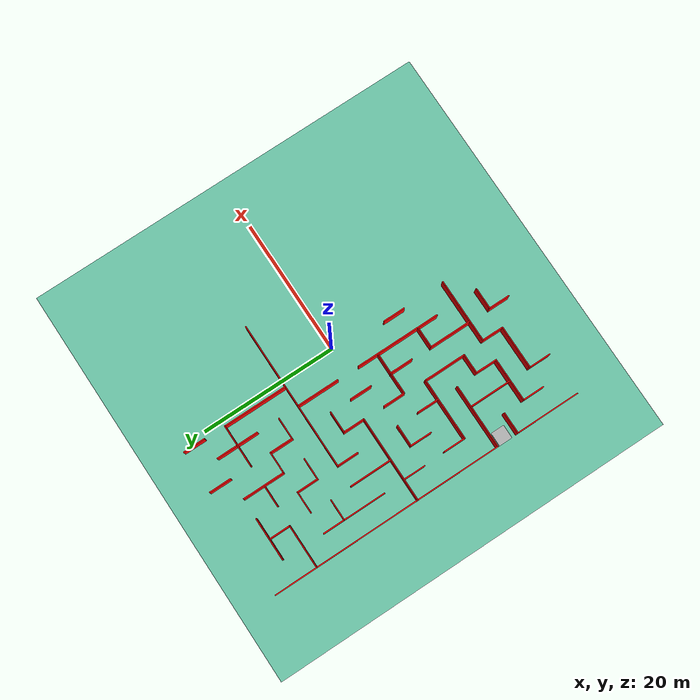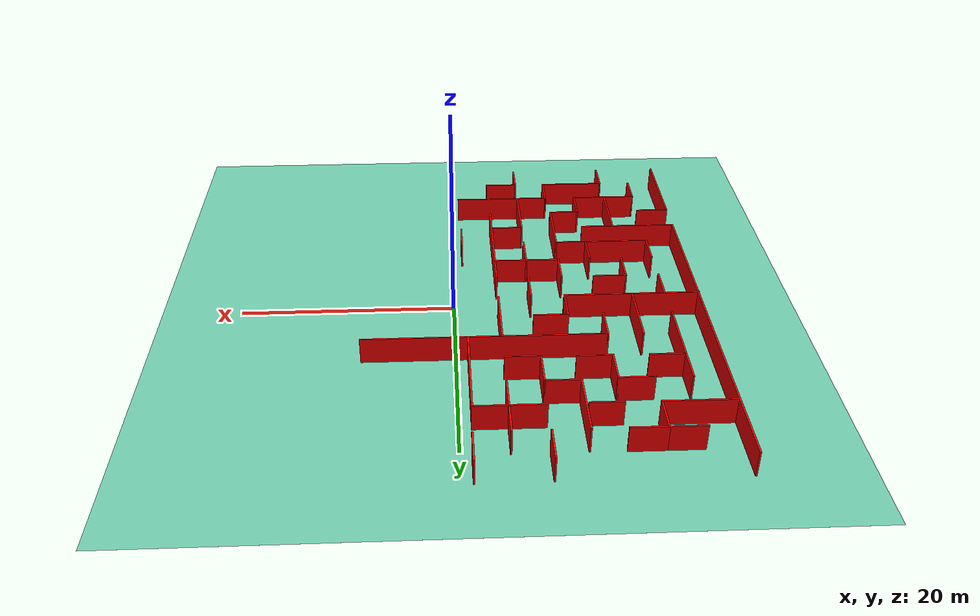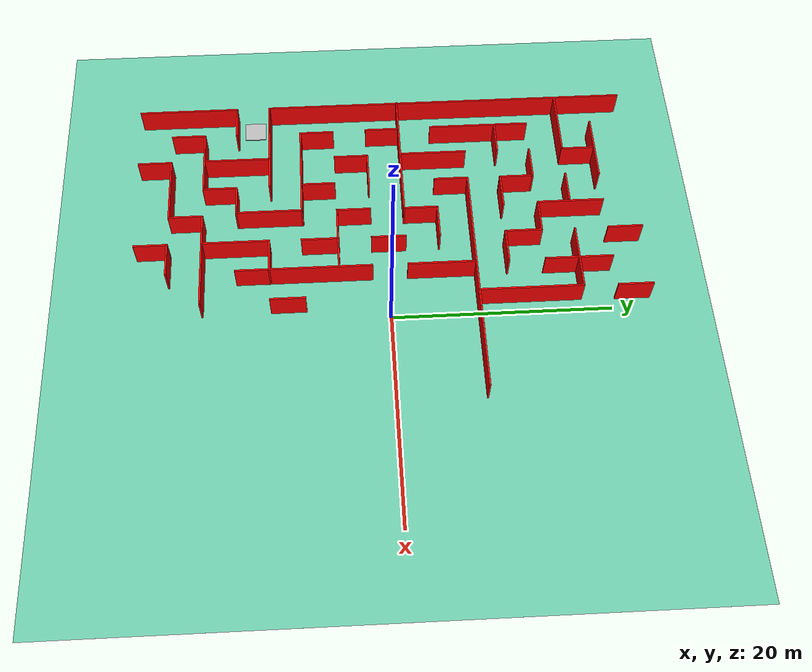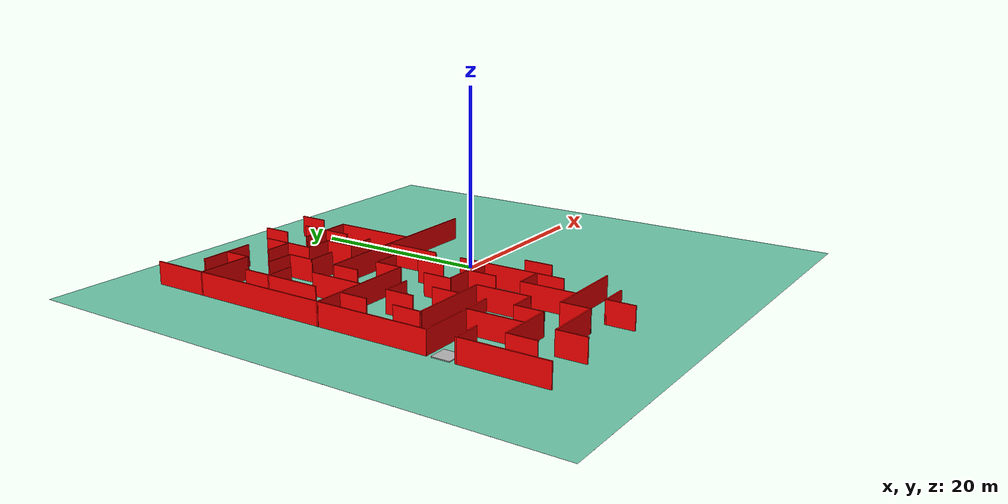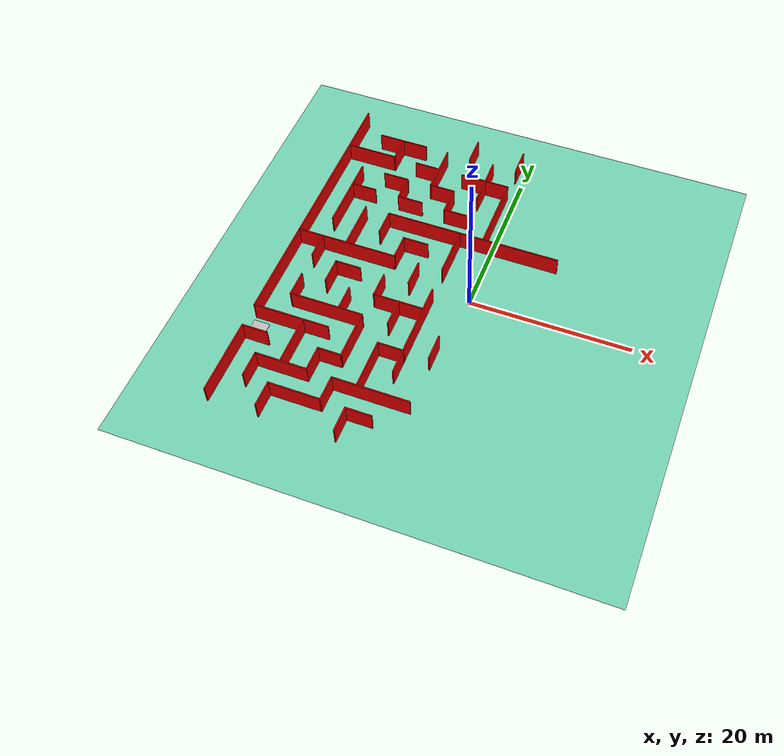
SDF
<sdf version="1.6">
 <world name="default">
  <include><uri>model://start_marker</uri><pose>-21.918570 -12.303885 0.026924 0 0 -1.57</pose></include>
  <model name="Final_Maze">
   <pose>-1.35978 -0.782493 0 0 -0 0</pose>
   <link name="Wall_0">
    <collision name="Wall_0_Collision">
     <geometry><box><size>60.01 60 0.001</size></box></geometry>
     <pose>0 0 0.0005 0 -0 0</pose>
    </collision>
    <visual name="Wall_0_Visual">
     <pose>0 0 0.0005 0 -0 0</pose>
     <geometry><box><size>60.01 60 0.001</size></box></geometry>
     <material>
      <script><uri>file://media/materials/scripts/gazebo.material</uri><name>Gazebo/Grey</name></script>
      <ambient>0.435294 0.796078 0.67451 1</ambient>
     </material>
     <meta><layer>0</layer></meta>
    </visual>
    <pose>-1.10022 -0.122507 0 0 -0 -1.5708</pose>
   </link>
   <link name="Wall_100">
    <collision name="Wall_100_Collision">
     <geometry><box><size>6.25 0.15 2.5</size></box></geometry>
     <pose>0 0 1.25 0 -0 0</pose>
    </collision>
    <visual name="Wall_100_Visual">
     <pose>0 0 1.25 0 -0 0</pose>
     <geometry><box><size>6.25 0.15 2.5</size></box></geometry>
     <material>
      <script><uri>file://media/materials/scripts/gazebo.material</uri><name>Gazebo/Grey</name></script>
      <ambient>1 0 0 1</ambient>
     </material>
     <meta><layer>1</layer></meta>
    </visual>
    <pose>-15.2625 5.65444 0.001 0 -0 -1.5708</pose>
   </link>
   <link name="Wall_102">
    <collision name="Wall_102_Collision">
     <geometry><box><size>3.25 0.15 2.5</size></box></geometry>
     <pose>0 0 1.25 0 -0 0</pose>
    </collision>
    <visual name="Wall_102_Visual">
     <pose>0 0 1.25 0 -0 0</pose>
     <geometry><box><size>3.25 0.15 2.5</size></box></geometry>
     <material>
      <script><uri>file://media/materials/scripts/gazebo.material</uri><name>Gazebo/Grey</name></script>
      <ambient>1 0 0 1</ambient>
     </material>
     <meta><layer>1</layer></meta>
    </visual>
    <pose>-18.3231 0.892618 0.001 0 -0 -1.5708</pose>
   </link>
   <link name="Wall_104">
    <collision name="Wall_104_Collision">
     <geometry><box><size>3.25 0.15 2.5</size></box></geometry>
     <pose>0 0 1.25 0 -0 0</pose>
    </collision>
    <visual name="Wall_104_Visual">
     <pose>0 0 1.25 0 -0 0</pose>
     <geometry><box><size>3.25 0.15 2.5</size></box></geometry>
     <material>
      <script><uri>file://media/materials/scripts/gazebo.material</uri><name>Gazebo/Grey</name></script>
      <ambient>1 0 0 1</ambient>
     </material>
     <meta><layer>1</layer></meta>
    </visual>
    <pose>-15.1922 -2.19884 0.001 0 -0 1.5708</pose>
   </link>
   <link name="Wall_105">
    <collision name="Wall_105_Collision">
     <geometry><box><size>3.25 0.15 2.5</size></box></geometry>
     <pose>0 0 1.25 0 -0 0</pose>
    </collision>
    <visual name="Wall_105_Visual">
     <pose>0 0 1.25 0 -0 0</pose>
     <geometry><box><size>3.25 0.15 2.5</size></box></geometry>
     <material>
      <script><uri>file://media/materials/scripts/gazebo.material</uri><name>Gazebo/Grey</name></script>
      <ambient>1 0 0 1</ambient>
     </material>
     <meta><layer>1</layer></meta>
    </visual>
    <pose>-13.6422 -0.648844 0.001 0 -0 0</pose>
   </link>
   <link name="Wall_107">
    <collision name="Wall_107_Collision">
     <geometry><box><size>3.25 0.15 2.5</size></box></geometry>
     <pose>0 0 1.25 0 -0 0</pose>
    </collision>
    <visual name="Wall_107_Visual">
     <pose>0 0 1.25 0 -0 0</pose>
     <geometry><box><size>3.25 0.15 2.5</size></box></geometry>
     <material>
      <script><uri>file://media/materials/scripts/gazebo.material</uri><name>Gazebo/Grey</name></script>
      <ambient>1 0 0 1</ambient>
     </material>
     <meta><layer>1</layer></meta>
    </visual>
    <pose>-5.81894 0.918183 0.001 0 -0 1.5708</pose>
   </link>
   <link name="Wall_136">
    <collision name="Wall_136_Collision">
     <geometry><box><size>9.5 0.15 2.5</size></box></geometry>
     <pose>0 0 1.25 0 -0 0</pose>
    </collision>
    <visual name="Wall_136_Visual">
     <pose>0 0 1.25 0 -0 0</pose>
     <geometry><box><size>9.5 0.15 2.5</size></box></geometry>
     <material>
      <script><uri>file://media/materials/scripts/gazebo.material</uri><name>Gazebo/Grey</name></script>
      <ambient>1 0 0 1</ambient>
     </material>
     <meta><layer>1</layer></meta>
    </visual>
    <pose>-18.3879 10.295 0.001 0 -0 -1.5708</pose>
   </link>
   <link name="Wall_138">
    <collision name="Wall_138_Collision">
     <geometry><box><size>3.25 0.15 2.5</size></box></geometry>
     <pose>0 0 1.25 0 -0 0</pose>
    </collision>
    <visual name="Wall_138_Visual">
     <pose>0 0 1.25 0 -0 0</pose>
     <geometry><box><size>3.25 0.15 2.5</size></box></geometry>
     <material>
      <script><uri>file://media/materials/scripts/gazebo.material</uri><name>Gazebo/Grey</name></script>
      <ambient>1 0 0 1</ambient>
     </material>
     <meta><layer>1</layer></meta>
    </visual>
    <pose>-16.8379 11.8391 0.001 0 -0 0</pose>
   </link>
   <link name="Wall_14">
    <collision name="Wall_14_Collision">
     <geometry><box><size>3.25 0.15 2.5</size></box></geometry>
     <pose>0 0 1.25 0 -0 0</pose>
    </collision>
    <visual name="Wall_14_Visual">
     <pose>0 0 1.25 0 -0 0</pose>
     <geometry><box><size>3.25 0.15 2.5</size></box></geometry>
     <material>
      <script><uri>file://media/materials/scripts/gazebo.material</uri><name>Gazebo/Grey</name></script>
      <ambient>1 0 0 1</ambient>
     </material>
     <meta><layer>1</layer></meta>
    </visual>
    <pose>-15.2471 -20.8919 0.001 0 -0 1.5708</pose>
   </link>
   <link name="Wall_140">
    <collision name="Wall_140_Collision">
     <geometry><box><size>3.25 0.15 2.5</size></box></geometry>
     <pose>0 0 1.25 0 -0 0</pose>
    </collision>
    <visual name="Wall_140_Visual">
     <pose>0 0 1.25 0 -0 0</pose>
     <geometry><box><size>3.25 0.15 2.5</size></box></geometry>
     <material>
      <script><uri>file://media/materials/scripts/gazebo.material</uri><name>Gazebo/Grey</name></script>
      <ambient>1 0 0 1</ambient>
     </material>
     <meta><layer>1</layer></meta>
    </visual>
    <pose>-13.6366 14.8996 0.001 0 -0 0</pose>
   </link>
   <link name="Wall_141">
    <collision name="Wall_141_Collision">
     <geometry><box><size>3.25 0.15 2.5</size></box></geometry>
     <pose>0 0 1.25 0 -0 0</pose>
    </collision>
    <visual name="Wall_141_Visual">
     <pose>0 0 1.25 0 -0 0</pose>
     <geometry><box><size>3.25 0.15 2.5</size></box></geometry>
     <material>
      <script><uri>file://media/materials/scripts/gazebo.material</uri><name>Gazebo/Grey</name></script>
      <ambient>1 0 0 1</ambient>
     </material>
     <meta><layer>1</layer></meta>
    </visual>
    <pose>-12.0867 13.3496 0.001 0 -0 -1.5708</pose>
   </link>
   <link name="Wall_142">
    <collision name="Wall_142_Collision">
     <geometry><box><size>3.25 0.15 2.5</size></box></geometry>
     <pose>0 0 1.25 0 -0 0</pose>
    </collision>
    <visual name="Wall_142_Visual">
     <pose>0 0 1.25 0 -0 0</pose>
     <geometry><box><size>3.25 0.15 2.5</size></box></geometry>
     <material>
      <script><uri>file://media/materials/scripts/gazebo.material</uri><name>Gazebo/Grey</name></script>
      <ambient>1 0 0 1</ambient>
     </material>
     <meta><layer>1</layer></meta>
    </visual>
    <pose>-10.5367 11.7996 0.001 0 -0 0</pose>
   </link>
   <link name="Wall_144">
    <collision name="Wall_144_Collision">
     <geometry><box><size>22 0.15 2.5</size></box></geometry>
     <pose>0 0 1.25 0 -0 0</pose>
    </collision>
    <visual name="Wall_144_Visual">
     <pose>0 0 1.25 0 -0 0</pose>
     <geometry><box><size>22 0.15 2.5</size></box></geometry>
     <material>
      <script><uri>file://media/materials/scripts/gazebo.material</uri><name>Gazebo/Grey</name></script>
      <ambient>1 0 0 1</ambient>
     </material>
     <meta><layer>1</layer></meta>
    </visual>
    <pose>-1.2011 8.70815 0.001 0 -0 0</pose>
   </link>
   <link name="Wall_146">
    <collision name="Wall_146_Collision">
     <geometry><box><size>3.25 0.15 2.5</size></box></geometry>
     <pose>0 0 1.25 0 -0 0</pose>
    </collision>
    <visual name="Wall_146_Visual">
     <pose>0 0 1.25 0 -0 0</pose>
     <geometry><box><size>3.25 0.15 2.5</size></box></geometry>
     <material>
      <script><uri>file://media/materials/scripts/gazebo.material</uri><name>Gazebo/Grey</name></script>
      <ambient>1 0 0 1</ambient>
     </material>
     <meta><layer>1</layer></meta>
    </visual>
    <pose>-12.1261 7.15815 0.001 0 -0 -1.5708</pose>
   </link>
   <link name="Wall_148">
    <collision name="Wall_148_Collision">
     <geometry><box><size>6.25 0.15 2.5</size></box></geometry>
     <pose>0 0 1.25 0 -0 0</pose>
    </collision>
    <visual name="Wall_148_Visual">
     <pose>0 0 1.25 0 -0 0</pose>
     <geometry><box><size>6.25 0.15 2.5</size></box></geometry>
     <material>
      <script><uri>file://media/materials/scripts/gazebo.material</uri><name>Gazebo/Grey</name></script>
      <ambient>1 0 0 1</ambient>
     </material>
     <meta><layer>1</layer></meta>
    </visual>
    <pose>-2.76855 5.58779 0.001 0 -0 -1.5708</pose>
   </link>
   <link name="Wall_15">
    <collision name="Wall_15_Collision">
     <geometry><box><size>6.5 0.15 2.5</size></box></geometry>
     <pose>0 0 1.25 0 -0 0</pose>
    </collision>
    <visual name="Wall_15_Visual">
     <pose>0 0 1.25 0 -0 0</pose>
     <geometry><box><size>6.5 0.15 2.5</size></box></geometry>
     <material>
      <script><uri>file://media/materials/scripts/gazebo.material</uri><name>Gazebo/Grey</name></script>
      <ambient>1 0 0 1</ambient>
     </material>
     <meta><layer>1</layer></meta>
    </visual>
    <pose>-12.0721 -19.3419 0.001 0 -0 0</pose>
   </link>
   <link name="Wall_158">
    <collision name="Wall_158_Collision">
     <geometry><box><size>6.5 0.15 2.5</size></box></geometry>
     <pose>0 0 1.25 0 -0 0</pose>
    </collision>
    <visual name="Wall_158_Visual">
     <pose>0 0 1.25 0 -0 0</pose>
     <geometry><box><size>6.5 0.15 2.5</size></box></geometry>
     <material>
      <script><uri>file://media/materials/scripts/gazebo.material</uri><name>Gazebo/Grey</name></script>
      <ambient>1 0 0 1</ambient>
     </material>
     <meta><layer>1</layer></meta>
    </visual>
    <pose>-18.3166 18.0907 0.001 0 -0 0</pose>
   </link>
   <link name="Wall_159">
    <collision name="Wall_159_Collision">
     <geometry><box><size>3.25 0.15 2.5</size></box></geometry>
     <pose>0 0 1.25 0 -0 0</pose>
    </collision>
    <visual name="Wall_159_Visual">
     <pose>0 0 1.25 0 -0 0</pose>
     <geometry><box><size>3.25 0.15 2.5</size></box></geometry>
     <material>
      <script><uri>file://media/materials/scripts/gazebo.material</uri><name>Gazebo/Grey</name></script>
      <ambient>1 0 0 1</ambient>
     </material>
     <meta><layer>1</layer></meta>
    </visual>
    <pose>-15.1416 19.6407 0.001 0 -0 1.5708</pose>
   </link>
   <link name="Wall_16">
    <collision name="Wall_16_Collision">
     <geometry><box><size>3.25 0.15 2.5</size></box></geometry>
     <pose>0 0 1.25 0 -0 0</pose>
    </collision>
    <visual name="Wall_16_Visual">
     <pose>0 0 1.25 0 -0 0</pose>
     <geometry><box><size>3.25 0.15 2.5</size></box></geometry>
     <material>
      <script><uri>file://media/materials/scripts/gazebo.material</uri><name>Gazebo/Grey</name></script>
      <ambient>1 0 0 1</ambient>
     </material>
     <meta><layer>1</layer></meta>
    </visual>
    <pose>-8.89709 -17.7919 0.001 0 -0 1.5708</pose>
   </link>
   <link name="Wall_160">
    <collision name="Wall_160_Collision">
     <geometry><box><size>3.25 0.15 2.5</size></box></geometry>
     <pose>0 0 1.25 0 -0 0</pose>
    </collision>
    <visual name="Wall_160_Visual">
     <pose>0 0 1.25 0 -0 0</pose>
     <geometry><box><size>3.25 0.15 2.5</size></box></geometry>
     <material>
      <script><uri>file://media/materials/scripts/gazebo.material</uri><name>Gazebo/Grey</name></script>
      <ambient>1 0 0 1</ambient>
     </material>
     <meta><layer>1</layer></meta>
    </visual>
    <pose>-16.6916 21.1907 0.001 0 -0 3.14159</pose>
   </link>
   <link name="Wall_162">
    <collision name="Wall_162_Collision">
     <geometry><box><size>3.25 0.15 2.5</size></box></geometry>
     <pose>0 0 1.25 0 -0 0</pose>
    </collision>
    <visual name="Wall_162_Visual">
     <pose>0 0 1.25 0 -0 0</pose>
     <geometry><box><size>3.25 0.15 2.5</size></box></geometry>
     <material>
      <script><uri>file://media/materials/scripts/gazebo.material</uri><name>Gazebo/Grey</name></script>
      <ambient>1 0 0 1</ambient>
     </material>
     <meta><layer>1</layer></meta>
    </visual>
    <pose>-13.5916 21.1907 0.001 0 -0 0</pose>
   </link>
   <link name="Wall_164">
    <collision name="Wall_164_Collision">
     <geometry><box><size>3 0.15 2.5</size></box></geometry>
     <pose>0 0 1.25 0 -0 0</pose>
    </collision>
    <visual name="Wall_164_Visual">
     <pose>0 0 1.25 0 -0 0</pose>
     <geometry><box><size>3 0.15 2.5</size></box></geometry>
     <material>
      <script><uri>file://media/materials/scripts/gazebo.material</uri><name>Gazebo/Grey</name></script>
      <ambient>1 0 0 1</ambient>
     </material>
     <meta><layer>1</layer></meta>
    </visual>
    <pose>-10.6862 18.0147 0.001 0 -0 0</pose>
   </link>
   <link name="Wall_166">
    <collision name="Wall_166_Collision">
     <geometry><box><size>6.25 0.15 2.5</size></box></geometry>
     <pose>0 0 1.25 0 -0 0</pose>
    </collision>
    <visual name="Wall_166_Visual">
     <pose>0 0 1.25 0 -0 0</pose>
     <geometry><box><size>6.25 0.15 2.5</size></box></geometry>
     <material>
      <script><uri>file://media/materials/scripts/gazebo.material</uri><name>Gazebo/Grey</name></script>
      <ambient>1 0 0 1</ambient>
     </material>
     <meta><layer>1</layer></meta>
    </visual>
    <pose>-8.99797 18.078 0.001 0 -0 -1.5708</pose>
   </link>
   <link name="Wall_169">
    <collision name="Wall_169_Collision">
     <geometry><box><size>3.25 0.15 2.5</size></box></geometry>
     <pose>0 0 1.25 0 -0 0</pose>
    </collision>
    <visual name="Wall_169_Visual">
     <pose>0 0 1.25 0 -0 0</pose>
     <geometry><box><size>3.25 0.15 2.5</size></box></geometry>
     <material>
      <script><uri>file://media/materials/scripts/gazebo.material</uri><name>Gazebo/Grey</name></script>
      <ambient>1 0 0 1</ambient>
     </material>
     <meta><layer>1</layer></meta>
    </visual>
    <pose>-7.44797 15.028 0.001 0 -0 0</pose>
   </link>
   <link name="Wall_17">
    <collision name="Wall_17_Collision">
     <geometry><box><size>9.5 0.15 2.5</size></box></geometry>
     <pose>0 0 1.25 0 -0 0</pose>
    </collision>
    <visual name="Wall_17_Visual">
     <pose>0 0 1.25 0 -0 0</pose>
     <geometry><box><size>9.5 0.15 2.5</size></box></geometry>
     <material>
      <script><uri>file://media/materials/scripts/gazebo.material</uri><name>Gazebo/Grey</name></script>
      <ambient>1 0 0 1</ambient>
     </material>
     <meta><layer>1</layer></meta>
    </visual>
    <pose>-4.22209 -16.2419 0.001 0 -0 0</pose>
   </link>
   <link name="Wall_170">
    <collision name="Wall_170_Collision">
     <geometry><box><size>3.5 0.15 2.5</size></box></geometry>
     <pose>0 0 1.25 0 -0 0</pose>
    </collision>
    <visual name="Wall_170_Visual">
     <pose>0 0 1.25 0 -0 0</pose>
     <geometry><box><size>3.5 0.15 2.5</size></box></geometry>
     <material>
      <script><uri>file://media/materials/scripts/gazebo.material</uri><name>Gazebo/Grey</name></script>
      <ambient>1 0 0 1</ambient>
     </material>
     <meta><layer>1</layer></meta>
    </visual>
    <pose>-5.89797 13.353 0.001 0 -0 -1.5708</pose>
   </link>
   <link name="Wall_171">
    <collision name="Wall_171_Collision">
     <geometry><box><size>3.25 0.15 2.5</size></box></geometry>
     <pose>0 0 1.25 0 -0 0</pose>
    </collision>
    <visual name="Wall_171_Visual">
     <pose>0 0 1.25 0 -0 0</pose>
     <geometry><box><size>3.25 0.15 2.5</size></box></geometry>
     <material>
      <script><uri>file://media/materials/scripts/gazebo.material</uri><name>Gazebo/Grey</name></script>
      <ambient>1 0 0 1</ambient>
     </material>
     <meta><layer>1</layer></meta>
    </visual>
    <pose>-4.34797 11.678 0.001 0 -0 0</pose>
   </link>
   <link name="Wall_173">
    <collision name="Wall_173_Collision">
     <geometry><box><size>3.25 0.15 2.5</size></box></geometry>
     <pose>0 0 1.25 0 -0 0</pose>
    </collision>
    <visual name="Wall_173_Visual">
     <pose>0 0 1.25 0 -0 0</pose>
     <geometry><box><size>3.25 0.15 2.5</size></box></geometry>
     <material>
      <script><uri>file://media/materials/scripts/gazebo.material</uri><name>Gazebo/Grey</name></script>
      <ambient>1 0 0 1</ambient>
     </material>
     <meta><layer>1</layer></meta>
    </visual>
    <pose>-5.88474 22.7612 0.001 0 -0 -1.5708</pose>
   </link>
   <link name="Wall_175">
    <collision name="Wall_175_Collision">
     <geometry><box><size>6.25 0.15 2.5</size></box></geometry>
     <pose>0 0 1.25 0 -0 0</pose>
    </collision>
    <visual name="Wall_175_Visual">
     <pose>0 0 1.25 0 -0 0</pose>
     <geometry><box><size>6.25 0.15 2.5</size></box></geometry>
     <material>
      <script><uri>file://media/materials/scripts/gazebo.material</uri><name>Gazebo/Grey</name></script>
      <ambient>1 0 0 1</ambient>
     </material>
     <meta><layer>1</layer></meta>
    </visual>
    <pose>-2.79976 18.0847 0.001 0 -0 0</pose>
   </link>
   <link name="Wall_176">
    <collision name="Wall_176_Collision">
     <geometry><box><size>9.5 0.15 2.5</size></box></geometry>
     <pose>0 0 1.25 0 -0 0</pose>
    </collision>
    <visual name="Wall_176_Visual">
     <pose>0 0 1.25 0 -0 0</pose>
     <geometry><box><size>9.5 0.15 2.5</size></box></geometry>
     <material>
      <script><uri>file://media/materials/scripts/gazebo.material</uri><name>Gazebo/Grey</name></script>
      <ambient>1 0 0 1</ambient>
     </material>
     <meta><layer>1</layer></meta>
    </visual>
    <pose>0.250245 13.4097 0.001 0 -0 -1.5708</pose>
   </link>
   <link name="Wall_178">
    <collision name="Wall_178_Collision">
     <geometry><box><size>6.25 0.15 2.5</size></box></geometry>
     <pose>0 0 1.25 0 -0 0</pose>
    </collision>
    <visual name="Wall_178_Visual">
     <pose>0 0 1.25 0 -0 0</pose>
     <geometry><box><size>6.25 0.15 2.5</size></box></geometry>
     <material>
      <script><uri>file://media/materials/scripts/gazebo.material</uri><name>Gazebo/Grey</name></script>
      <ambient>1 0 0 1</ambient>
     </material>
     <meta><layer>1</layer></meta>
    </visual>
    <pose>-2.73652 18.078 0.001 0 -0 -1.5708</pose>
   </link>
   <link name="Wall_182">
    <collision name="Wall_182_Collision">
     <geometry><box><size>3.25 0.15 2.5</size></box></geometry>
     <pose>0 0 1.25 0 -0 0</pose>
    </collision>
    <visual name="Wall_182_Visual">
     <pose>0 0 1.25 0 -0 0</pose>
     <geometry><box><size>3.25 0.15 2.5</size></box></geometry>
     <material>
      <script><uri>file://media/materials/scripts/gazebo.material</uri><name>Gazebo/Grey</name></script>
      <ambient>1 0 0 1</ambient>
     </material>
     <meta><layer>1</layer></meta>
    </visual>
    <pose>0.333185 22.7748 0.001 0 -0 -1.5708</pose>
   </link>
   <link name="Wall_21">
    <collision name="Wall_21_Collision">
     <geometry><box><size>3.17391 0.15 2.5</size></box></geometry>
     <pose>0 0 1.25 0 -0 0</pose>
    </collision>
    <visual name="Wall_21_Visual">
     <pose>0 0 1.25 0 -0 0</pose>
     <geometry><box><size>3.17391 0.15 2.5</size></box></geometry>
     <material>
      <script><uri>file://media/materials/scripts/gazebo.material</uri><name>Gazebo/Grey</name></script>
      <ambient>1 0 0 1</ambient>
     </material>
     <meta><layer>1</layer></meta>
    </visual>
    <pose>-5.87416 -20.8897 0.001 0 -0 1.5708</pose>
   </link>
   <link name="Wall_22">
    <collision name="Wall_22_Collision">
     <geometry><box><size>3.25 0.15 2.5</size></box></geometry>
     <pose>0 0 1.25 0 -0 0</pose>
    </collision>
    <visual name="Wall_22_Visual">
     <pose>0 0 1.25 0 -0 0</pose>
     <geometry><box><size>3.25 0.15 2.5</size></box></geometry>
     <material>
      <script><uri>file://media/materials/scripts/gazebo.material</uri><name>Gazebo/Grey</name></script>
      <ambient>1 0 0 1</ambient>
     </material>
     <meta><layer>1</layer></meta>
    </visual>
    <pose>-4.32416 -19.3951 0.001 0 -0 0</pose>
   </link>
   <link name="Wall_32">
    <collision name="Wall_32_Collision">
     <geometry><box><size>3.25 0.15 2.5</size></box></geometry>
     <pose>0 0 1.25 0 -0 0</pose>
    </collision>
    <visual name="Wall_32_Visual">
     <pose>0 0 1.25 0 -0 0</pose>
     <geometry><box><size>3.25 0.15 2.5</size></box></geometry>
     <material>
      <script><uri>file://media/materials/scripts/gazebo.material</uri><name>Gazebo/Grey</name></script>
      <ambient>1 0 0 1</ambient>
     </material>
     <meta><layer>1</layer></meta>
    </visual>
    <pose>0.339512 -8.41309 0.001 0 -0 -1.5708</pose>
   </link>
   <link name="Wall_45">
    <collision name="Wall_45_Collision">
     <geometry><box><size>3.25 0.15 2.5</size></box></geometry>
     <pose>0 0 1.25 0 -0 0</pose>
    </collision>
    <visual name="Wall_45_Visual">
     <pose>0 0 1.25 0 -0 0</pose>
     <geometry><box><size>3.25 0.15 2.5</size></box></geometry>
     <material>
      <script><uri>file://media/materials/scripts/gazebo.material</uri><name>Gazebo/Grey</name></script>
      <ambient>1 0 0 1</ambient>
     </material>
     <meta><layer>1</layer></meta>
    </visual>
    <pose>-18.3368 -17.7538 0.001 0 -0 1.5708</pose>
   </link>
   <link name="Wall_46">
    <collision name="Wall_46_Collision">
     <geometry><box><size>6.5 0.15 2.5</size></box></geometry>
     <pose>0 0 1.25 0 -0 0</pose>
    </collision>
    <visual name="Wall_46_Visual">
     <pose>0 0 1.25 0 -0 0</pose>
     <geometry><box><size>6.5 0.15 2.5</size></box></geometry>
     <material>
      <script><uri>file://media/materials/scripts/gazebo.material</uri><name>Gazebo/Grey</name></script>
      <ambient>1 0 0 1</ambient>
     </material>
     <meta><layer>1</layer></meta>
    </visual>
    <pose>-15.1618 -16.2038 0.001 0 -0 0</pose>
   </link>
   <link name="Wall_47">
    <collision name="Wall_47_Collision">
     <geometry><box><size>3.25 0.15 2.5</size></box></geometry>
     <pose>0 0 1.25 0 -0 0</pose>
    </collision>
    <visual name="Wall_47_Visual">
     <pose>0 0 1.25 0 -0 0</pose>
     <geometry><box><size>3.25 0.15 2.5</size></box></geometry>
     <material>
      <script><uri>file://media/materials/scripts/gazebo.material</uri><name>Gazebo/Grey</name></script>
      <ambient>1 0 0 1</ambient>
     </material>
     <meta><layer>1</layer></meta>
    </visual>
    <pose>-11.9868 -14.6538 0.001 0 -0 1.5708</pose>
   </link>
   <link name="Wall_48">
    <collision name="Wall_48_Collision">
     <geometry><box><size>3 0.15 2.5</size></box></geometry>
     <pose>0 0 1.25 0 -0 0</pose>
    </collision>
    <visual name="Wall_48_Visual">
     <pose>0 0 1.25 0 -0 0</pose>
     <geometry><box><size>3 0.15 2.5</size></box></geometry>
     <material>
      <script><uri>file://media/materials/scripts/gazebo.material</uri><name>Gazebo/Grey</name></script>
      <ambient>1 0 0 1</ambient>
     </material>
     <meta><layer>1</layer></meta>
    </visual>
    <pose>-10.5618 -13.1038 0.001 0 -0 0</pose>
   </link>
   <link name="Wall_49">
    <collision name="Wall_49_Collision">
     <geometry><box><size>6.25 0.15 2.5</size></box></geometry>
     <pose>0 0 1.25 0 -0 0</pose>
    </collision>
    <visual name="Wall_49_Visual">
     <pose>0 0 1.25 0 -0 0</pose>
     <geometry><box><size>6.25 0.15 2.5</size></box></geometry>
     <material>
      <script><uri>file://media/materials/scripts/gazebo.material</uri><name>Gazebo/Grey</name></script>
      <ambient>1 0 0 1</ambient>
     </material>
     <meta><layer>1</layer></meta>
    </visual>
    <pose>-9.13683 -10.0538 0.001 0 -0 1.5708</pose>
   </link>
   <link name="Wall_50">
    <collision name="Wall_50_Collision">
     <geometry><box><size>9.25 0.15 2.5</size></box></geometry>
     <pose>0 0 1.25 0 -0 0</pose>
    </collision>
    <visual name="Wall_50_Visual">
     <pose>0 0 1.25 0 -0 0</pose>
     <geometry><box><size>9.25 0.15 2.5</size></box></geometry>
     <material>
      <script><uri>file://media/materials/scripts/gazebo.material</uri><name>Gazebo/Grey</name></script>
      <ambient>1 0 0 1</ambient>
     </material>
     <meta><layer>1</layer></meta>
    </visual>
    <pose>-13.6868 -7.00385 0.001 0 -0 3.14159</pose>
   </link>
   <link name="Wall_51">
    <collision name="Wall_51_Collision">
     <geometry><box><size>3.25 0.15 2.5</size></box></geometry>
     <pose>0 0 1.25 0 -0 0</pose>
    </collision>
    <visual name="Wall_51_Visual">
     <pose>0 0 1.25 0 -0 0</pose>
     <geometry><box><size>3.25 0.15 2.5</size></box></geometry>
     <material>
      <script><uri>file://media/materials/scripts/gazebo.material</uri><name>Gazebo/Grey</name></script>
      <ambient>1 0 0 1</ambient>
     </material>
     <meta><layer>1</layer></meta>
    </visual>
    <pose>-18.2368 -5.45385 0.001 0 -0 1.5708</pose>
   </link>
   <link name="Wall_53">
    <collision name="Wall_53_Collision">
     <geometry><box><size>3.25 0.15 2.5</size></box></geometry>
     <pose>0 0 1.25 0 -0 0</pose>
    </collision>
    <visual name="Wall_53_Visual">
     <pose>0 0 1.25 0 -0 0</pose>
     <geometry><box><size>3.25 0.15 2.5</size></box></geometry>
     <material>
      <script><uri>file://media/materials/scripts/gazebo.material</uri><name>Gazebo/Grey</name></script>
      <ambient>1 0 0 1</ambient>
     </material>
     <meta><layer>1</layer></meta>
    </visual>
    <pose>-12.1008 -5.4524 0.001 0 -0 1.5708</pose>
   </link>
   <link name="Wall_58">
    <collision name="Wall_58_Collision">
     <geometry><box><size>34.5 0.15 2.5</size></box></geometry>
     <pose>0 0 1.25 0 -0 0</pose>
    </collision>
    <visual name="Wall_58_Visual">
     <pose>0 0 1.25 0 -0 0</pose>
     <geometry><box><size>34.5 0.15 2.5</size></box></geometry>
     <material>
      <script><uri>file://media/materials/scripts/gazebo.material</uri><name>Gazebo/Grey</name></script>
      <ambient>1 0 0 1</ambient>
     </material>
     <meta><layer>1</layer></meta>
    </visual>
    <pose>-21.4897 7.17765 0.001 0 -0 -1.5708</pose>
   </link>
   <link name="Wall_59">
    <collision name="Wall_59_Collision">
     <geometry><box><size>9.5 0.15 2.5</size></box></geometry>
     <pose>0 0 1.25 0 -0 0</pose>
    </collision>
    <visual name="Wall_59_Visual">
     <pose>0 0 1.25 0 -0 0</pose>
     <geometry><box><size>9.5 0.15 2.5</size></box></geometry>
     <material>
      <script><uri>file://media/materials/scripts/gazebo.material</uri><name>Gazebo/Grey</name></script>
      <ambient>1 0 0 1</ambient>
     </material>
     <meta><layer>1</layer></meta>
    </visual>
    <pose>-16.8147 -9.99735 0.001 0 -0 0</pose>
   </link>
   <link name="Wall_61">
    <collision name="Wall_61_Collision">
     <geometry><box><size>6.25 0.15 2.5</size></box></geometry>
     <pose>0 0 1.25 0 -0 0</pose>
    </collision>
    <visual name="Wall_61_Visual">
     <pose>0 0 1.25 0 -0 0</pose>
     <geometry><box><size>6.25 0.15 2.5</size></box></geometry>
     <material>
      <script><uri>file://media/materials/scripts/gazebo.material</uri><name>Gazebo/Grey</name></script>
      <ambient>1 0 0 1</ambient>
     </material>
     <meta><layer>1</layer></meta>
    </visual>
    <pose>-15.2746 -13.0561 0.001 0 -0 -1.5708</pose>
   </link>
   <link name="Wall_63">
    <collision name="Wall_63_Collision">
     <geometry><box><size>6.25 0.15 2.5</size></box></geometry>
     <pose>0 0 1.25 0 -0 0</pose>
    </collision>
    <visual name="Wall_63_Visual">
     <pose>0 0 1.25 0 -0 0</pose>
     <geometry><box><size>6.25 0.15 2.5</size></box></geometry>
     <material>
      <script><uri>file://media/materials/scripts/gazebo.material</uri><name>Gazebo/Grey</name></script>
      <ambient>1 0 0 1</ambient>
     </material>
     <meta><layer>1</layer></meta>
    </visual>
    <pose>-5.88267 -13.1206 0.001 0 -0 1.5708</pose>
   </link>
   <link name="Wall_64">
    <collision name="Wall_64_Collision">
     <geometry><box><size>3.25 0.15 2.5</size></box></geometry>
     <pose>0 0 1.25 0 -0 0</pose>
    </collision>
    <visual name="Wall_64_Visual">
     <pose>0 0 1.25 0 -0 0</pose>
     <geometry><box><size>3.25 0.15 2.5</size></box></geometry>
     <material>
      <script><uri>file://media/materials/scripts/gazebo.material</uri><name>Gazebo/Grey</name></script>
      <ambient>1 0 0 1</ambient>
     </material>
     <meta><layer>1</layer></meta>
    </visual>
    <pose>-4.33268 -10.0706 0.001 0 -0 0</pose>
   </link>
   <link name="Wall_66">
    <collision name="Wall_66_Collision">
     <geometry><box><size>12.5 0.15 2.5</size></box></geometry>
     <pose>0 0 1.25 0 -0 0</pose>
    </collision>
    <visual name="Wall_66_Visual">
     <pose>0 0 1.25 0 -0 0</pose>
     <geometry><box><size>12.5 0.15 2.5</size></box></geometry>
     <material>
      <script><uri>file://media/materials/scripts/gazebo.material</uri><name>Gazebo/Grey</name></script>
      <ambient>1 0 0 1</ambient>
     </material>
     <meta><layer>1</layer></meta>
    </visual>
    <pose>-2.78694 -6.93503 0.001 0 -0 1.5708</pose>
   </link>
   <link name="Wall_8">
    <collision name="Wall_8_Collision">
     <geometry><box><size>3.25 0.15 2.5</size></box></geometry>
     <pose>0 0 1.25 0 -0 0</pose>
    </collision>
    <visual name="Wall_8_Visual">
     <pose>0 0 1.25 0 -0 0</pose>
     <geometry><box><size>3.25 0.15 2.5</size></box></geometry>
     <material>
      <script><uri>file://media/materials/scripts/gazebo.material</uri><name>Gazebo/Grey</name></script>
      <ambient>1 0 0 1</ambient>
     </material>
     <meta><layer>1</layer></meta>
    </visual>
    <pose>-19.9348 -13.1494 0.001 0 -0 3.14159</pose>
   </link>
   <link name="Wall_87">
    <collision name="Wall_87_Collision">
     <geometry><box><size>3.25 0.15 2.5</size></box></geometry>
     <pose>0 0 1.25 0 -0 0</pose>
    </collision>
    <visual name="Wall_87_Visual">
     <pose>0 0 1.25 0 -0 0</pose>
     <geometry><box><size>3.25 0.15 2.5</size></box></geometry>
     <material>
      <script><uri>file://media/materials/scripts/gazebo.material</uri><name>Gazebo/Grey</name></script>
      <ambient>1 0 0 1</ambient>
     </material>
     <meta><layer>1</layer></meta>
    </visual>
    <pose>-9.00031 -2.20032 0.001 0 -0 -1.5708</pose>
   </link>
   <link name="Wall_88">
    <collision name="Wall_88_Collision">
     <geometry><box><size>6.25 0.15 2.5</size></box></geometry>
     <pose>0 0 1.25 0 -0 0</pose>
    </collision>
    <visual name="Wall_88_Visual">
     <pose>0 0 1.25 0 -0 0</pose>
     <geometry><box><size>6.25 0.15 2.5</size></box></geometry>
     <material>
      <script><uri>file://media/materials/scripts/gazebo.material</uri><name>Gazebo/Grey</name></script>
      <ambient>1 0 0 1</ambient>
     </material>
     <meta><layer>1</layer></meta>
    </visual>
    <pose>-5.95031 -3.75032 0.001 0 -0 0</pose>
   </link>
   <link name="Wall_9">
    <collision name="Wall_9_Collision">
     <geometry><box><size>9.5 0.15 2.5</size></box></geometry>
     <pose>0 0 1.25 0 -0 0</pose>
    </collision>
    <visual name="Wall_9_Visual">
     <pose>0 0 1.25 0 -0 0</pose>
     <geometry><box><size>9.5 0.15 2.5</size></box></geometry>
     <material>
      <script><uri>file://media/materials/scripts/gazebo.material</uri><name>Gazebo/Grey</name></script>
      <ambient>1 0 0 1</ambient>
     </material>
     <meta><layer>1</layer></meta>
    </visual>
    <pose>-21.4848 -17.8244 0.001 0 -0 -1.5708</pose>
   </link>
   <link name="Wall_90">
    <collision name="Wall_90_Collision">
     <geometry><box><size>3.5 0.15 2.5</size></box></geometry>
     <pose>0 0 1.25 0 -0 0</pose>
    </collision>
    <visual name="Wall_90_Visual">
     <pose>0 0 1.25 0 -0 0</pose>
     <geometry><box><size>3.5 0.15 2.5</size></box></geometry>
     <material>
      <script><uri>file://media/materials/scripts/gazebo.material</uri><name>Gazebo/Grey</name></script>
      <ambient>1 0 0 1</ambient>
     </material>
     <meta><layer>1</layer></meta>
    </visual>
    <pose>-5.84951 -5.38435 0.001 0 -0 -1.5708</pose>
   </link>
   <link name="Wall_96">
    <collision name="Wall_96_Collision">
     <geometry><box><size>12.75 0.15 2.5</size></box></geometry>
     <pose>0 0 1.25 0 -0 0</pose>
    </collision>
    <visual name="Wall_96_Visual">
     <pose>0 0 1.25 0 -0 0</pose>
     <geometry><box><size>12.75 0.15 2.5</size></box></geometry>
     <material>
      <script><uri>file://media/materials/scripts/gazebo.material</uri><name>Gazebo/Grey</name></script>
      <ambient>1 0 0 1</ambient>
     </material>
     <meta><layer>1</layer></meta>
    </visual>
    <pose>-15.2243 2.51297 0.001 0 -0 0</pose>
   </link>
   <link name="Wall_97">
    <collision name="Wall_97_Collision">
     <geometry><box><size>3.25 0.15 2.5</size></box></geometry>
     <pose>0 0 1.25 0 -0 0</pose>
    </collision>
    <visual name="Wall_97_Visual">
     <pose>0 0 1.25 0 -0 0</pose>
     <geometry><box><size>3.25 0.15 2.5</size></box></geometry>
     <material>
      <script><uri>file://media/materials/scripts/gazebo.material</uri><name>Gazebo/Grey</name></script>
      <ambient>1 0 0 1</ambient>
     </material>
     <meta><layer>1</layer></meta>
    </visual>
    <pose>-8.92433 4.06297 0.001 0 -0 1.5708</pose>
   </link>
   <link name="Wall_98">
    <collision name="Wall_98_Collision">
     <geometry><box><size>3.25 0.15 2.5</size></box></geometry>
     <pose>0 0 1.25 0 -0 0</pose>
    </collision>
    <visual name="Wall_98_Visual">
     <pose>0 0 1.25 0 -0 0</pose>
     <geometry><box><size>3.25 0.15 2.5</size></box></geometry>
     <material>
      <script><uri>file://media/materials/scripts/gazebo.material</uri><name>Gazebo/Grey</name></script>
      <ambient>1 0 0 1</ambient>
     </material>
     <meta><layer>1</layer></meta>
    </visual>
    <pose>-7.37433 5.61298 0.001 0 -0 0</pose>
   </link>
   <static>1</static>
  </model>
 </world>
</sdf>
